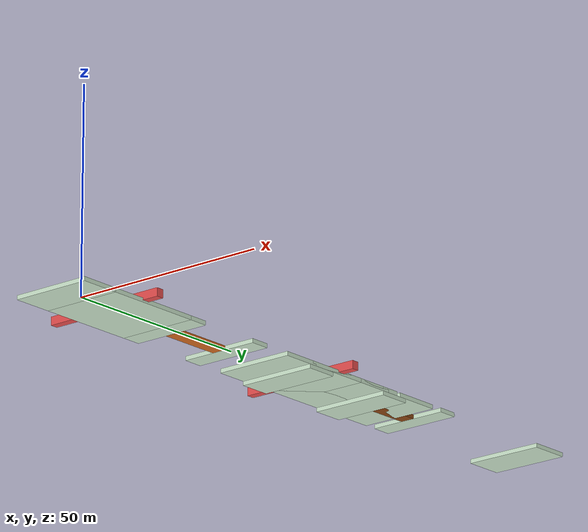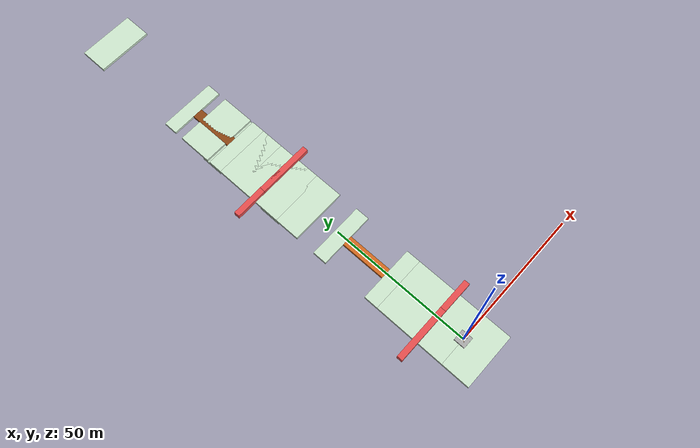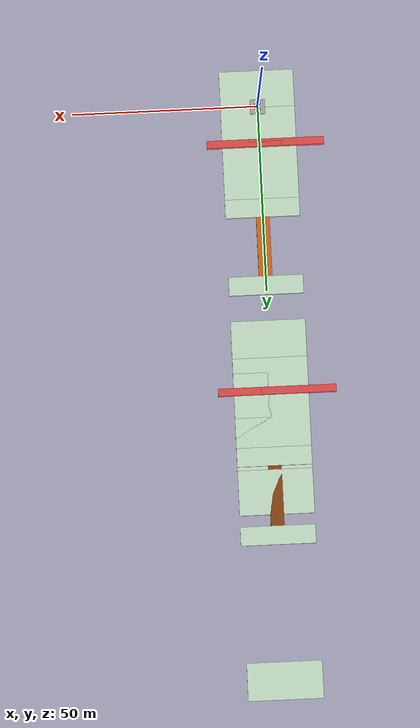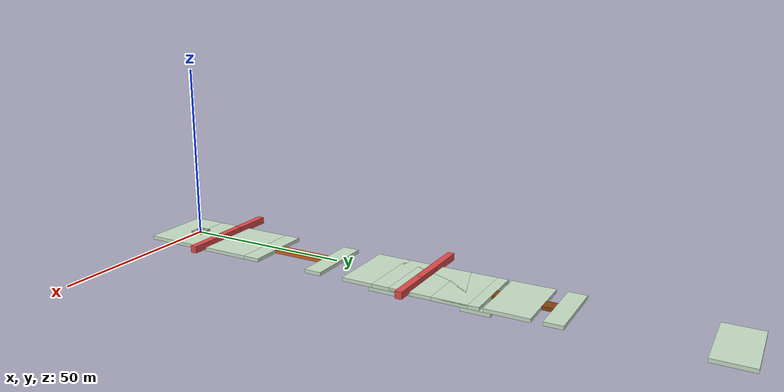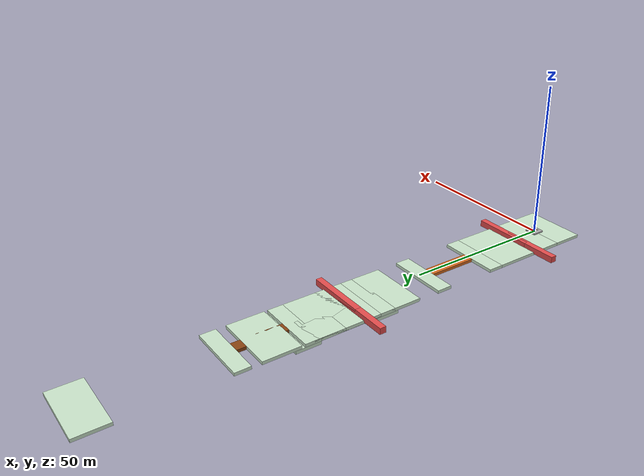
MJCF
<mujoco model="ant">
  <compiler angle="degree" coordinate="local" inertiafromgeom="true"/>
  <option integrator="RK4" timestep="0.01"/>
  <default>
    <joint armature="1" damping="1" limited="true"/>
    <geom conaffinity="1" condim="3" density="5.0" friction="0.5 0.5 0.5" margin="0.01" rgba="0.8 0.6 0.4 1"/>
  </default>
  <asset>
    <texture builtin="gradient" height="100" rgb1="1 1 1" rgb2="0 0 0" type="skybox" width="100"/>
    <texture builtin="flat" height="1278" mark="cross" markrgb="1 1 1" name="texgeom" random="0.01" rgb1="0.8 0.6 0.4" rgb2="0.8 0.6 0.4" type="cube" width="127"/>
    <texture builtin="checker" height="100" name="texplane" rgb1=".1 .2 .3" rgb2=".1 .2 .3" type="2d" width="100"/>
    <texture builtin="checker" height="100" name="texball" rgb1="0 0 0" rgb2="1 1 1" type="2d" width="100"/>
    <material name="MatPlane" reflectance="0.5" shininess="1" specular="1" texrepeat="10 5" texture="texplane"/>
    <material name="MatPlane_goal" reflectance="0.5" shininess="1" specular="1" texrepeat="10 12.5" texture="texplane"/>
    <material name="MatPlane_boxmid" reflectance="0.5" shininess="1" specular="1" texrepeat="10 4" texture="texplane"/>
    <material name="MatPlane_boxback" reflectance="0.5" shininess="1" specular="1" texrepeat="10 6" texture="texplane"/>
    <material name="MatPlane_front" reflectance="0.5" shininess="1" specular="1" texrepeat="10 2.5" texture="texplane"/>
    <material name="MatPlane_gather" reflectance="0.5" shininess="1" specular="1" texrepeat="10 8" texture="texplane"/>
    <material name="geom" texture="texgeom" texuniform="true"/>
  </asset>
  <worldbody>
    <!-- test object -->

    <body name="box0" pos="0 0 0">
      <joint name="OBJTy0" pos="0 0 0" axis="0 1 0" type="slide" limited="false" damping="0" />
      <joint name="OBJTz0" pos="0 0 0" axis="0 0 1" type="slide" limited="false" damping="0" />
    <geom name="objGeom0"  priority = "2"  pos="0 0 0" size="2 1.95 0.5" rgba="0.6627450980392157 0.6627450980392157 0.6627450980392157 1" type="box" friction="0 0 0.5"  mass="0.000001"/>
    </body>
    <body name="box1" pos="0 0 0">
      <joint name="OBJTy1" pos="0 0 0" axis="0 1 0" type="slide" limited="false" damping="0" />
      <joint name="OBJTz1" pos="0 0 0" axis="0 0 1" type="slide" limited="false" damping="0" />
    <geom name="objGeom1"  priority = "2"  pos="0 0 0" size="2 1.95 0.5" rgba="0.6627450980392157 0.6627450980392157 0.6627450980392157 1" type="box" friction="0 0 0.5"  mass="0.000001"/>
    </body>

    <body name="agent_torso" pos="0 0 0.75">
      <camera name="track" mode="trackcom" pos="0 -5 1.2" xyaxes="1 0 0 0 0 1"/>

      <geom name="agent_torso_geom" pos="0 0 0" size="0.25" type="sphere" priority = "3"/>
      <joint armature="0" damping="0" limited="false" margin="0.01" name="root" pos="0 0 0" type="free"/>
      <body name="agent_front_left_leg" pos="0 0 0">
        <geom fromto="0.0 0.0 0.0 0.2 0.2 0.0" name="aux_1_geom" size="0.08" type="capsule" priority = "3"/>
        <body name="aux_1" pos="0.2 0.2 0">
          <joint axis="0 0 1" name="hip_1" pos="0.0 0.0 0.0" range="-30 30" type="hinge"/>
          <geom fromto="0.0 0.0 0.0 0.2 0.2 0.0" name="agent_left_leg_geom" size="0.08" type="capsule" priority = "3"/>
          <body pos="0.2 0.2 0">
            <joint axis="-1 1 0" name="ankle_1" pos="0.0 0.0 0.0" range="30 70" type="hinge"/>
            <geom fromto="0.0 0.0 0.0 0.4 0.4 0.0" name="agent_left_ankle_geom" size="0.08" type="capsule" priority = "3"/>
          </body>
        </body>
      </body>
      <body name="agent_front_right_leg" pos="0 0 0">
        <geom fromto="0.0 0.0 0.0 -0.2 0.2 0.0" name="aux_2_geom" size="0.08" type="capsule" priority = "3"/>
        <body name="aux_2" pos="-0.2 0.2 0">
          <joint axis="0 0 1" name="hip_2" pos="0.0 0.0 0.0" range="-30 30" type="hinge"/>
          <geom fromto="0.0 0.0 0.0 -0.2 0.2 0.0" name="agent_right_leg_geom" size="0.08" type="capsule" priority = "3"/>
          <body pos="-0.2 0.2 0">
            <joint axis="1 1 0" name="ankle_2" pos="0.0 0.0 0.0" range="-70 -30" type="hinge"/>
            <geom fromto="0.0 0.0 0.0 -0.4 0.4 0.0" name="agent_right_ankle_geom" size="0.08" type="capsule" priority = "3"/>
          </body>
        </body>
      </body>
      <body name="agent_back_leg" pos="0 0 0">
        <geom fromto="0.0 0.0 0.0 -0.2 -0.2 0.0" name="aux_3_geom" size="0.08" type="capsule" priority = "3"/>
        <body name="aux_3" pos="-0.2 -0.2 0">
          <joint axis="0 0 1" name="hip_3" pos="0.0 0.0 0.0" range="-30 30" type="hinge"/>
          <geom fromto="0.0 0.0 0.0 -0.2 -0.2 0.0" name="agent_back_leg_geom" size="0.08" type="capsule" priority = "3"/>
          <body pos="-0.2 -0.2 0">
            <joint axis="-1 1 0" name="ankle_3" pos="0.0 0.0 0.0" range="-70 -30" type="hinge"/>
            <geom fromto="0.0 0.0 0.0 -0.4 -0.4 0.0" name="agent_third_ankle_geom" size="0.08" type="capsule" priority = "3"/>
          </body>
        </body>
      </body>
      <body name="agent_right_back_leg" pos="0 0 0">
        <geom fromto="0.0 0.0 0.0 0.2 -0.2 0.0" name="aux_4_geom" size="0.08" type="capsule" priority = "3"/>
        <body name="aux_4" pos="0.2 -0.2 0">
          <joint axis="0 0 1" name="hip_4" pos="0.0 0.0 0.0" range="-30 30" type="hinge"/>
          <geom fromto="0.0 0.0 0.0 0.2 -0.2 0.0" name="agent_rightback_leg_geom" size="0.08" type="capsule" priority = "3"/>
          <body pos="0.2 -0.2 0">
            <joint axis="1 1 0" name="ankle_4" pos="0.0 0.0 0.0" range="30 70" type="hinge"/>
            <geom fromto="0.0 0.0 0.0 0.4 -0.4 0.0" name="agent_fourth_ankle_geom" size="0.08" type="capsule" priority = "3"/>
          </body>
        </body>
      </body>
    </body>
    <geom name="curbleft0" pos="-7.35 10 0.5" conaffinity="1" rgba="0.9 0.3 0.3 1" size="10 1 1" type="box"/>
    <geom name="curbright0" pos="4.15 10 0.5" conaffinity="1" rgba="0.9 0.3 0.3 1" size="10 1 1" type="box"/>
    <geom name="curbleft1" pos="-7.35 77 0.5" conaffinity="1" rgba="0.9 0.3 0.3 1" size="10 1 1" type="box"/>
    <geom name="curbright1" pos="4.15 77 0.5" conaffinity="1" rgba="0.9 0.3 0.3 1" size="10  1 1" type="box"/>

    <light cutoff="100" diffuse="1 1 1" dir="-0 0 -1.3" directional="true" exponent="1" pos="0 0 1.3" specular=".1 .1 .1"/>
    <geom name="startplane" pos="0 -5 -0.5" rgba="0.8 0.9 0.8 1" conaffinity="1"  friction="1 1 1" material="MatPlane" size="10 5 0.5" type="box" priority = "3"/>

    <geom name="antgoal0_plane" pos="0 12.5 -0.5" conaffinity="1" rgba="0.8 0.9 0.8 1" friction="1 1 1" material="MatPlane_goal" size="10 12.5 0.5" type="box" priority = "3"/>
    <geom name="antbridge0_frontplane" pos="0 27.5 -0.5" conaffinity="1" rgba="0.8 0.9 0.8 1" friction="1 1 1" material="MatPlane_front" size="10 2.5 0.5" type="box" priority = "3"/>
    <geom name="antbridge0_rearplane" pos="0 48.5 -0.5" conaffinity="1" rgba="0.8 0.9 0.8 1" friction="1 1 1" material="MatPlane_front" size="10 2.5 0.5" type="box" priority = "3"/>

    <geom name="antgoal1_plane" pos="0 79.5 -0.5" conaffinity="1" rgba="0.8 0.9 0.8 1" friction="1 1 1" material="MatPlane_goal" size="10 12.5 0.5" type="box" priority = "3"/>
    <geom name="antbridge1_frontplane" pos="0 94.5 -0.5" conaffinity="1" rgba="0.8 0.9 0.8 1" friction="1 1 1" material="MatPlane_front" size="10 2.5 0.5" type="box" priority = "3"/>
    <geom name="antbridge1_rearplane" pos="0 115.5 -0.5" conaffinity="1" rgba="0.8 0.9 0.8 1" friction="1 1 1" material="MatPlane_front" size="10 2.5 0.5" type="box" priority = "3"/>

    <geom name="antbox0_frontplane" pos="0 63 -0.5" conaffinity="1" rgba="0.8 0.9 0.8 1" friction="1 1 1" material="MatPlane" size="10 5 0.5" type="box" />
    <geom name="antbox0_midplane" pos="0 70 -1.5" conaffinity="1" rgba="0.8 0.9 0.8 1" friction="1 1 1" material="MatPlane_boxmid" size="10 4 0.5" type="box" />
    <geom name="antbox0_backplane" pos="0 78 -0.5" conaffinity="1" rgba="0.8 0.9 0.8 1" friction="1 1 1" material="MatPlane_boxmid" size="10 6 0.5" type="box" />

    <geom name="antbox1_frontplane" pos="0 89 -0.5" conaffinity="1" rgba="0.8 0.9 0.8 1" friction="1 1 1" material="MatPlane" size="10 5 0.5" type="box" />
    <geom name="antbox1_midplane" pos="0 96 -1.5" conaffinity="1" rgba="0.8 0.9 0.8 1" friction="1 1 1" material="MatPlane_boxmid" size="10 4 0.5" type="box" />
    <geom name="antbox1_backplane" pos="0 104 -0.5" conaffinity="1" rgba="0.8 0.9 0.8 1" friction="1 1 1" material="MatPlane_boxmid" size="10 6 0.5" type="box" />

    <geom name="finishplane" pos="0 154 -0.5" conaffinity="1" rgba="0.8 0.9 0.8 1" friction="1 1 1" material="MatPlane" size="10 5 0.5" type="box" priority = "3"/>

    <geom name="bridge0" pos="0 38 -0.5" conaffinity="1" rgba="0.82352941 0.41176471 0.11764706 1" size="1.8 8 0.5" type="box" />
    <geom name="bridge1" pos="0 105 -0.5" conaffinity="1" rgba="0.54509804 0.27058824 0.0745098 1" size="1.8 8 0.5" type="box" />

  </worldbody>
  <actuator>
    <motor ctrllimited="true" ctrlrange="-1.0 1.0" joint="hip_4" gear="150"/>
    <motor ctrllimited="true" ctrlrange="-1.0 1.0" joint="ankle_4" gear="150"/>
    <motor ctrllimited="true" ctrlrange="-1.0 1.0" joint="hip_1" gear="150"/>
    <motor ctrllimited="true" ctrlrange="-1.0 1.0" joint="ankle_1" gear="150"/>
    <motor ctrllimited="true" ctrlrange="-1.0 1.0" joint="hip_2" gear="150"/>
    <motor ctrllimited="true" ctrlrange="-1.0 1.0" joint="ankle_2" gear="150"/>
    <motor ctrllimited="true" ctrlrange="-1.0 1.0" joint="hip_3" gear="150"/>
    <motor ctrllimited="true" ctrlrange="-1.0 1.0" joint="ankle_3" gear="150"/>
  </actuator>
</mujoco>
